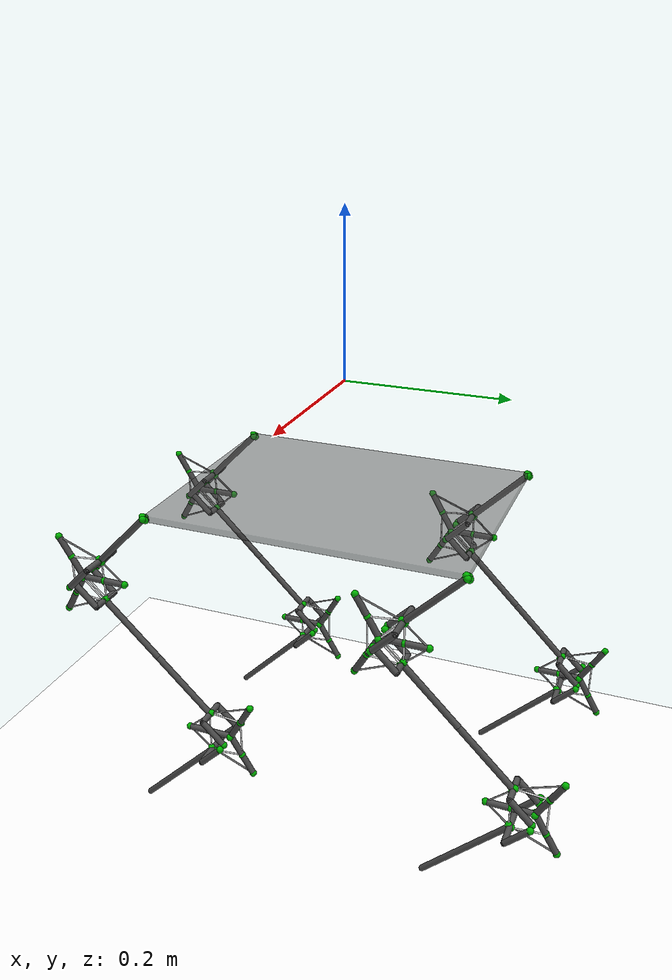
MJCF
<?xml version="1.0" ?>
<mujoco>
	<sensor>
		<actuatorfrc name="QuadSegrity1rl_hip_flexor" actuator="QuadSegrity1rl_hip_flexor"/>
		<actuatorfrc name="QuadSegrity1rl_hip_extensor" actuator="QuadSegrity1rl_hip_extensor"/>
		<actuatorfrc name="QuadSegrity1rl_knee_flexor" actuator="QuadSegrity1rl_knee_flexor"/>
		<actuatorfrc name="QuadSegrity1rl_knee_extensor" actuator="QuadSegrity1rl_knee_extensor"/>
		<actuatorfrc name="QuadSegrity1rr_hip_flexor" actuator="QuadSegrity1rr_hip_flexor"/>
		<actuatorfrc name="QuadSegrity1rr_hip_extensor" actuator="QuadSegrity1rr_hip_extensor"/>
		<actuatorfrc name="QuadSegrity1rr_knee_flexor" actuator="QuadSegrity1rr_knee_flexor"/>
		<actuatorfrc name="QuadSegrity1rr_knee_extensor" actuator="QuadSegrity1rr_knee_extensor"/>
		<actuatorfrc name="QuadSegrity1fr_hip_flexor" actuator="QuadSegrity1fr_hip_flexor"/>
		<actuatorfrc name="QuadSegrity1fr_hip_extensor" actuator="QuadSegrity1fr_hip_extensor"/>
		<actuatorfrc name="QuadSegrity1fr_knee_flexor" actuator="QuadSegrity1fr_knee_flexor"/>
		<actuatorfrc name="QuadSegrity1fr_knee_extensor" actuator="QuadSegrity1fr_knee_extensor"/>
		<actuatorfrc name="QuadSegrity1fl_hip_flexor" actuator="QuadSegrity1fl_hip_flexor"/>
		<actuatorfrc name="QuadSegrity1fl_hip_extensor" actuator="QuadSegrity1fl_hip_extensor"/>
		<actuatorfrc name="QuadSegrity1fl_knee_flexor" actuator="QuadSegrity1fl_knee_flexor"/>
		<actuatorfrc name="QuadSegrity1fl_knee_extensor" actuator="QuadSegrity1fl_knee_extensor"/>
	</sensor>
	<sensor/>
	<actuator>
		<muscle name="QuadSegrity1rl_hip_flexor" tendon="QuadSegrity1rl_hip_flexor" ctrllimited="false" forcelimited="false" lengthrange="-10 10" force="80" scale="200" range="0.1 1.8"/>
		<muscle name="QuadSegrity1rl_hip_extensor" tendon="QuadSegrity1rl_hip_extensor" ctrllimited="false" forcelimited="false" lengthrange="-10 10" force="80" scale="200" range="0.1 1.8"/>
		<muscle name="QuadSegrity1rl_knee_flexor" tendon="QuadSegrity1rl_knee_flexor" ctrllimited="false" forcelimited="false" lengthrange="-10 10" force="80" scale="200" range="0.1 1.8"/>
		<muscle name="QuadSegrity1rl_knee_extensor" tendon="QuadSegrity1rl_knee_extensor" ctrllimited="false" forcelimited="false" lengthrange="-10 10" force="80" scale="200" range="0.1 1.8"/>
		<muscle name="QuadSegrity1rr_hip_flexor" tendon="QuadSegrity1rr_hip_flexor" ctrllimited="false" forcelimited="false" lengthrange="-10 10" force="80" scale="200" range="0.1 1.8"/>
		<muscle name="QuadSegrity1rr_hip_extensor" tendon="QuadSegrity1rr_hip_extensor" ctrllimited="false" forcelimited="false" lengthrange="-10 10" force="80" scale="200" range="0.1 1.8"/>
		<muscle name="QuadSegrity1rr_knee_flexor" tendon="QuadSegrity1rr_knee_flexor" ctrllimited="false" forcelimited="false" lengthrange="-10 10" force="80" scale="200" range="0.1 1.8"/>
		<muscle name="QuadSegrity1rr_knee_extensor" tendon="QuadSegrity1rr_knee_extensor" ctrllimited="false" forcelimited="false" lengthrange="-10 10" force="80" scale="200" range="0.1 1.8"/>
		<muscle name="QuadSegrity1fr_hip_flexor" tendon="QuadSegrity1fr_hip_flexor" ctrllimited="false" forcelimited="false" lengthrange="-10 10" force="80" scale="200" range="0.1 1.8"/>
		<muscle name="QuadSegrity1fr_hip_extensor" tendon="QuadSegrity1fr_hip_extensor" ctrllimited="false" forcelimited="false" lengthrange="-10 10" force="80" scale="200" range="0.1 1.8"/>
		<muscle name="QuadSegrity1fr_knee_flexor" tendon="QuadSegrity1fr_knee_flexor" ctrllimited="false" forcelimited="false" lengthrange="-10 10" force="80" scale="200" range="0.1 1.8"/>
		<muscle name="QuadSegrity1fr_knee_extensor" tendon="QuadSegrity1fr_knee_extensor" ctrllimited="false" forcelimited="false" lengthrange="-10 10" force="80" scale="200" range="0.1 1.8"/>
		<muscle name="QuadSegrity1fl_hip_flexor" tendon="QuadSegrity1fl_hip_flexor" ctrllimited="false" forcelimited="false" lengthrange="-10 10" force="80" scale="200" range="0.1 1.8"/>
		<muscle name="QuadSegrity1fl_hip_extensor" tendon="QuadSegrity1fl_hip_extensor" ctrllimited="false" forcelimited="false" lengthrange="-10 10" force="80" scale="200" range="0.1 1.8"/>
		<muscle name="QuadSegrity1fl_knee_flexor" tendon="QuadSegrity1fl_knee_flexor" ctrllimited="false" forcelimited="false" lengthrange="-10 10" force="80" scale="200" range="0.1 1.8"/>
		<muscle name="QuadSegrity1fl_knee_extensor" tendon="QuadSegrity1fl_knee_extensor" ctrllimited="false" forcelimited="false" lengthrange="-10 10" force="80" scale="200" range="0.1 1.8"/>
	</actuator>
	<tendon>
		<spatial name="QuadSegrity1rl_hip_0" width="0.001" stiffness="1500" damping="10">
			<site site="QuadSegrity1rl_scalupa_5"/>
			<site site="QuadSegrity1rl_hip_B"/>
		</spatial>
		<spatial name="QuadSegrity1rl_hip_1" width="0.001" stiffness="1500" damping="10">
			<site site="QuadSegrity1rl_scalupa_4"/>
			<site site="QuadSegrity1rl_hip_D"/>
		</spatial>
		<spatial name="QuadSegrity1rl_hip_2" width="0.001" stiffness="1500" damping="10">
			<site site="QuadSegrity1rl_humerus_top_5"/>
			<site site="QuadSegrity1rl_hip_D"/>
		</spatial>
		<spatial name="QuadSegrity1rl_hip_3" width="0.001" stiffness="1500" damping="10">
			<site site="QuadSegrity1rl_humerus_top_4"/>
			<site site="QuadSegrity1rl_hip_C"/>
		</spatial>
		<spatial name="QuadSegrity1rl_knee_0" width="0.001" stiffness="1500" damping="10">
			<site site="QuadSegrity1rl_humerus_bot_5"/>
			<site site="QuadSegrity1rl_knee_D"/>
		</spatial>
		<spatial name="QuadSegrity1rl_knee_1" width="0.001" stiffness="1500" damping="10">
			<site site="QuadSegrity1rl_humerus_bot_4"/>
			<site site="QuadSegrity1rl_knee_C"/>
		</spatial>
		<spatial name="QuadSegrity1rl_knee_2" width="0.001" stiffness="1500" damping="10">
			<site site="QuadSegrity1rl_radius_5"/>
			<site site="QuadSegrity1rl_knee_B"/>
		</spatial>
		<spatial name="QuadSegrity1rl_knee_3" width="0.001" stiffness="1500" damping="10">
			<site site="QuadSegrity1rl_radius_4"/>
			<site site="QuadSegrity1rl_knee_D"/>
		</spatial>
		<spatial limited="false" name="QuadSegrity1rl_hip_flexor" range="-0.01 0.01" width="0.001" rgba="1 1 1 1" stiffness="0" damping="1">
			<site site="QuadSegrity1rl_scalupa_0"/>
			<site site="QuadSegrity1rl_scalupa_4"/>
			<site site="QuadSegrity1rl_hip_2"/>
			<site site="QuadSegrity1rl_humerus_top_4"/>
		</spatial>
		<spatial limited="false" name="QuadSegrity1rl_hip_extensor" range="-0.01 0.01" width="0.001" rgba="1 1 1 1" stiffness="0" damping="1">
			<site site="QuadSegrity1rl_scalupa_1"/>
			<site site="QuadSegrity1rl_scalupa_5"/>
			<site site="QuadSegrity1rl_hip_0"/>
			<site site="QuadSegrity1rl_hip_1"/>
			<site site="QuadSegrity1rl_humerus_top_5"/>
		</spatial>
		<spatial limited="false" name="QuadSegrity1rl_knee_flexor" range="-0.01 0.01" width="0.001" rgba="1 1 1 1" stiffness="0" damping="1">
			<site site="QuadSegrity1rl_scalupa_2"/>
			<site site="QuadSegrity1rl_scalupa_6"/>
			<site site="QuadSegrity1rl_hip_3"/>
			<site site="QuadSegrity1rl_humerus_top_6"/>
			<site site="QuadSegrity1rl_humerus_bot_5"/>
			<site site="QuadSegrity1rl_knee_2"/>
			<site site="QuadSegrity1rl_radius_5"/>
		</spatial>
		<spatial limited="false" name="QuadSegrity1rl_knee_extensor" range="-0.01 0.01" width="0.001" rgba="1 1 1 1" stiffness="0" damping="1">
			<site site="QuadSegrity1rl_scalupa_3"/>
			<site site="QuadSegrity1rl_scalupa_7"/>
			<site site="QuadSegrity1rl_hip_4"/>
			<site site="QuadSegrity1rl_humerus_top_7"/>
			<site site="QuadSegrity1rl_humerus_bot_4"/>
			<site site="QuadSegrity1rl_knee_1"/>
			<site site="QuadSegrity1rl_knee_0"/>
			<site site="QuadSegrity1rl_radius_4"/>
		</spatial>
		<spatial name="QuadSegrity1rr_hip_0" width="0.001" stiffness="1500" damping="10">
			<site site="QuadSegrity1rr_scalupa_5"/>
			<site site="QuadSegrity1rr_hip_B"/>
		</spatial>
		<spatial name="QuadSegrity1rr_hip_1" width="0.001" stiffness="1500" damping="10">
			<site site="QuadSegrity1rr_scalupa_4"/>
			<site site="QuadSegrity1rr_hip_D"/>
		</spatial>
		<spatial name="QuadSegrity1rr_hip_2" width="0.001" stiffness="1500" damping="10">
			<site site="QuadSegrity1rr_humerus_top_5"/>
			<site site="QuadSegrity1rr_hip_D"/>
		</spatial>
		<spatial name="QuadSegrity1rr_hip_3" width="0.001" stiffness="1500" damping="10">
			<site site="QuadSegrity1rr_humerus_top_4"/>
			<site site="QuadSegrity1rr_hip_C"/>
		</spatial>
		<spatial name="QuadSegrity1rr_knee_0" width="0.001" stiffness="1500" damping="10">
			<site site="QuadSegrity1rr_humerus_bot_5"/>
			<site site="QuadSegrity1rr_knee_D"/>
		</spatial>
		<spatial name="QuadSegrity1rr_knee_1" width="0.001" stiffness="1500" damping="10">
			<site site="QuadSegrity1rr_humerus_bot_4"/>
			<site site="QuadSegrity1rr_knee_C"/>
		</spatial>
		<spatial name="QuadSegrity1rr_knee_2" width="0.001" stiffness="1500" damping="10">
			<site site="QuadSegrity1rr_radius_5"/>
			<site site="QuadSegrity1rr_knee_B"/>
		</spatial>
		<spatial name="QuadSegrity1rr_knee_3" width="0.001" stiffness="1500" damping="10">
			<site site="QuadSegrity1rr_radius_4"/>
			<site site="QuadSegrity1rr_knee_D"/>
		</spatial>
		<spatial limited="false" name="QuadSegrity1rr_hip_flexor" range="-0.01 0.01" width="0.001" rgba="1 1 1 1" stiffness="0" damping="1">
			<site site="QuadSegrity1rr_scalupa_0"/>
			<site site="QuadSegrity1rr_scalupa_4"/>
			<site site="QuadSegrity1rr_hip_2"/>
			<site site="QuadSegrity1rr_humerus_top_4"/>
		</spatial>
		<spatial limited="false" name="QuadSegrity1rr_hip_extensor" range="-0.01 0.01" width="0.001" rgba="1 1 1 1" stiffness="0" damping="1">
			<site site="QuadSegrity1rr_scalupa_1"/>
			<site site="QuadSegrity1rr_scalupa_5"/>
			<site site="QuadSegrity1rr_hip_0"/>
			<site site="QuadSegrity1rr_hip_1"/>
			<site site="QuadSegrity1rr_humerus_top_5"/>
		</spatial>
		<spatial limited="false" name="QuadSegrity1rr_knee_flexor" range="-0.01 0.01" width="0.001" rgba="1 1 1 1" stiffness="0" damping="1">
			<site site="QuadSegrity1rr_scalupa_2"/>
			<site site="QuadSegrity1rr_scalupa_6"/>
			<site site="QuadSegrity1rr_hip_3"/>
			<site site="QuadSegrity1rr_humerus_top_6"/>
			<site site="QuadSegrity1rr_humerus_bot_5"/>
			<site site="QuadSegrity1rr_knee_2"/>
			<site site="QuadSegrity1rr_radius_5"/>
		</spatial>
		<spatial limited="false" name="QuadSegrity1rr_knee_extensor" range="-0.01 0.01" width="0.001" rgba="1 1 1 1" stiffness="0" damping="1">
			<site site="QuadSegrity1rr_scalupa_3"/>
			<site site="QuadSegrity1rr_scalupa_7"/>
			<site site="QuadSegrity1rr_hip_4"/>
			<site site="QuadSegrity1rr_humerus_top_7"/>
			<site site="QuadSegrity1rr_humerus_bot_4"/>
			<site site="QuadSegrity1rr_knee_1"/>
			<site site="QuadSegrity1rr_knee_0"/>
			<site site="QuadSegrity1rr_radius_4"/>
		</spatial>
		<spatial name="QuadSegrity1fr_hip_0" width="0.001" stiffness="1500" damping="10">
			<site site="QuadSegrity1fr_scalupa_5"/>
			<site site="QuadSegrity1fr_hip_B"/>
		</spatial>
		<spatial name="QuadSegrity1fr_hip_1" width="0.001" stiffness="1500" damping="10">
			<site site="QuadSegrity1fr_scalupa_4"/>
			<site site="QuadSegrity1fr_hip_D"/>
		</spatial>
		<spatial name="QuadSegrity1fr_hip_2" width="0.001" stiffness="1500" damping="10">
			<site site="QuadSegrity1fr_humerus_top_5"/>
			<site site="QuadSegrity1fr_hip_D"/>
		</spatial>
		<spatial name="QuadSegrity1fr_hip_3" width="0.001" stiffness="1500" damping="10">
			<site site="QuadSegrity1fr_humerus_top_4"/>
			<site site="QuadSegrity1fr_hip_C"/>
		</spatial>
		<spatial name="QuadSegrity1fr_knee_0" width="0.001" stiffness="1500" damping="10">
			<site site="QuadSegrity1fr_humerus_bot_5"/>
			<site site="QuadSegrity1fr_knee_D"/>
		</spatial>
		<spatial name="QuadSegrity1fr_knee_1" width="0.001" stiffness="1500" damping="10">
			<site site="QuadSegrity1fr_humerus_bot_4"/>
			<site site="QuadSegrity1fr_knee_C"/>
		</spatial>
		<spatial name="QuadSegrity1fr_knee_2" width="0.001" stiffness="1500" damping="10">
			<site site="QuadSegrity1fr_radius_5"/>
			<site site="QuadSegrity1fr_knee_B"/>
		</spatial>
		<spatial name="QuadSegrity1fr_knee_3" width="0.001" stiffness="1500" damping="10">
			<site site="QuadSegrity1fr_radius_4"/>
			<site site="QuadSegrity1fr_knee_D"/>
		</spatial>
		<spatial limited="false" name="QuadSegrity1fr_hip_flexor" range="-0.01 0.01" width="0.001" rgba="1 1 1 1" stiffness="0" damping="1">
			<site site="QuadSegrity1fr_scalupa_0"/>
			<site site="QuadSegrity1fr_scalupa_4"/>
			<site site="QuadSegrity1fr_hip_2"/>
			<site site="QuadSegrity1fr_humerus_top_4"/>
		</spatial>
		<spatial limited="false" name="QuadSegrity1fr_hip_extensor" range="-0.01 0.01" width="0.001" rgba="1 1 1 1" stiffness="0" damping="1">
			<site site="QuadSegrity1fr_scalupa_1"/>
			<site site="QuadSegrity1fr_scalupa_5"/>
			<site site="QuadSegrity1fr_hip_0"/>
			<site site="QuadSegrity1fr_hip_1"/>
			<site site="QuadSegrity1fr_humerus_top_5"/>
		</spatial>
		<spatial limited="false" name="QuadSegrity1fr_knee_flexor" range="-0.01 0.01" width="0.001" rgba="1 1 1 1" stiffness="0" damping="1">
			<site site="QuadSegrity1fr_scalupa_2"/>
			<site site="QuadSegrity1fr_scalupa_6"/>
			<site site="QuadSegrity1fr_hip_3"/>
			<site site="QuadSegrity1fr_humerus_top_6"/>
			<site site="QuadSegrity1fr_humerus_bot_5"/>
			<site site="QuadSegrity1fr_knee_2"/>
			<site site="QuadSegrity1fr_radius_5"/>
		</spatial>
		<spatial limited="false" name="QuadSegrity1fr_knee_extensor" range="-0.01 0.01" width="0.001" rgba="1 1 1 1" stiffness="0" damping="1">
			<site site="QuadSegrity1fr_scalupa_3"/>
			<site site="QuadSegrity1fr_scalupa_7"/>
			<site site="QuadSegrity1fr_hip_4"/>
			<site site="QuadSegrity1fr_humerus_top_7"/>
			<site site="QuadSegrity1fr_humerus_bot_4"/>
			<site site="QuadSegrity1fr_knee_1"/>
			<site site="QuadSegrity1fr_knee_0"/>
			<site site="QuadSegrity1fr_radius_4"/>
		</spatial>
		<spatial name="QuadSegrity1fl_hip_0" width="0.001" stiffness="1500" damping="10">
			<site site="QuadSegrity1fl_scalupa_5"/>
			<site site="QuadSegrity1fl_hip_B"/>
		</spatial>
		<spatial name="QuadSegrity1fl_hip_1" width="0.001" stiffness="1500" damping="10">
			<site site="QuadSegrity1fl_scalupa_4"/>
			<site site="QuadSegrity1fl_hip_D"/>
		</spatial>
		<spatial name="QuadSegrity1fl_hip_2" width="0.001" stiffness="1500" damping="10">
			<site site="QuadSegrity1fl_humerus_top_5"/>
			<site site="QuadSegrity1fl_hip_D"/>
		</spatial>
		<spatial name="QuadSegrity1fl_hip_3" width="0.001" stiffness="1500" damping="10">
			<site site="QuadSegrity1fl_humerus_top_4"/>
			<site site="QuadSegrity1fl_hip_C"/>
		</spatial>
		<spatial name="QuadSegrity1fl_knee_0" width="0.001" stiffness="1500" damping="10">
			<site site="QuadSegrity1fl_humerus_bot_5"/>
			<site site="QuadSegrity1fl_knee_D"/>
		</spatial>
		<spatial name="QuadSegrity1fl_knee_1" width="0.001" stiffness="1500" damping="10">
			<site site="QuadSegrity1fl_humerus_bot_4"/>
			<site site="QuadSegrity1fl_knee_C"/>
		</spatial>
		<spatial name="QuadSegrity1fl_knee_2" width="0.001" stiffness="1500" damping="10">
			<site site="QuadSegrity1fl_radius_5"/>
			<site site="QuadSegrity1fl_knee_B"/>
		</spatial>
		<spatial name="QuadSegrity1fl_knee_3" width="0.001" stiffness="1500" damping="10">
			<site site="QuadSegrity1fl_radius_4"/>
			<site site="QuadSegrity1fl_knee_D"/>
		</spatial>
		<spatial limited="false" name="QuadSegrity1fl_hip_flexor" range="-0.01 0.01" width="0.001" rgba="1 1 1 1" stiffness="0" damping="1">
			<site site="QuadSegrity1fl_scalupa_0"/>
			<site site="QuadSegrity1fl_scalupa_4"/>
			<site site="QuadSegrity1fl_hip_2"/>
			<site site="QuadSegrity1fl_humerus_top_4"/>
		</spatial>
		<spatial limited="false" name="QuadSegrity1fl_hip_extensor" range="-0.01 0.01" width="0.001" rgba="1 1 1 1" stiffness="0" damping="1">
			<site site="QuadSegrity1fl_scalupa_1"/>
			<site site="QuadSegrity1fl_scalupa_5"/>
			<site site="QuadSegrity1fl_hip_0"/>
			<site site="QuadSegrity1fl_hip_1"/>
			<site site="QuadSegrity1fl_humerus_top_5"/>
		</spatial>
		<spatial limited="false" name="QuadSegrity1fl_knee_flexor" range="-0.01 0.01" width="0.001" rgba="1 1 1 1" stiffness="0" damping="1">
			<site site="QuadSegrity1fl_scalupa_2"/>
			<site site="QuadSegrity1fl_scalupa_6"/>
			<site site="QuadSegrity1fl_hip_3"/>
			<site site="QuadSegrity1fl_humerus_top_6"/>
			<site site="QuadSegrity1fl_humerus_bot_5"/>
			<site site="QuadSegrity1fl_knee_2"/>
			<site site="QuadSegrity1fl_radius_5"/>
		</spatial>
		<spatial limited="false" name="QuadSegrity1fl_knee_extensor" range="-0.01 0.01" width="0.001" rgba="1 1 1 1" stiffness="0" damping="1">
			<site site="QuadSegrity1fl_scalupa_3"/>
			<site site="QuadSegrity1fl_scalupa_7"/>
			<site site="QuadSegrity1fl_hip_4"/>
			<site site="QuadSegrity1fl_humerus_top_7"/>
			<site site="QuadSegrity1fl_humerus_bot_4"/>
			<site site="QuadSegrity1fl_knee_1"/>
			<site site="QuadSegrity1fl_knee_0"/>
			<site site="QuadSegrity1fl_radius_4"/>
		</spatial>
	</tendon>
	<statistic extent="0.4" center="0 0 -0.1"/>
	<visual>
		<rgba haze="0.3 0.3 0.5 1" fog="0.7 0.3 0.1 0.6"/>
	</visual>
	<option timestep="0.001" iterations="50" integrator="RK4" tolerance="1e-10" viscosity="0.002" density="1.2"/>
	<default>
		<joint type="ball"/>
		<muscle ctrllimited="true" ctrlrange="-1000 1000"/>
		<geom size="0.004" density="2000" rgba="0.3 0.3 0.3 1"/>
		<site size="0.0045" rgba="0 .7 0 1"/>
	</default>
	<asset>

		<texture name="texplane" type="2d" builtin="checker" rgb1=".25 .25 .25" rgb2=".28 .28 .28" width="512" height="512" markrgb=".8 .8 .8"/>
		<material name="matplane" reflectance="0.1" texture="texplane" texrepeat="1 1" texuniform="true"/>
	</asset>
	<worldbody>
		<geom name="floor" rgba="1 1 1 1" pos="0 0 -0.7" size="0 0 1" type="plane" material="matplane"/>
		<light directional="true" diffuse=".8 .8 .8" specular=".2 .2 .2" pos="0 0 5" dir="0 0 -1"/>
		<body pos="0 0 0">
			<joint type="free"/>
			<geom type="box" mass="0" rgba="0.3 0.3 0.3 0.5" pos="0 0 -0.15" size="0.15 0.2 0.004"/>
			<geom type="capsule" fromto="0.18 0.10100505063388332 -0.24899494936611666 0.17999999999999997 0.12928932188134523 -0.22071067811865475"/>
			<geom type="capsule" fromto="0.17999999999999997 0.12928932188134523 -0.22071067811865475 0.15 0.12928932188134523 -0.22071067811865475"/>
			<geom type="capsule" fromto="0.12 0.10100505063388332 -0.24899494936611666 0.12 0.12928932188134523 -0.22071067811865475"/>
			<geom type="capsule" fromto="0.12 0.12928932188134523 -0.22071067811865475 0.15 0.12928932188134523 -0.22071067811865475"/>
			<geom type="capsule" fromto="0.15 0.2 -0.15 0.15 0.12928932188134523 -0.22071067811865475"/>
			<site name="QuadSegrity1rl_scalupa_A" pos="0.18 0.10100505063388332 -0.24899494936611666"/>
			<site name="QuadSegrity1rl_scalupa_B" pos="0.12 0.10100505063388332 -0.24899494936611666"/>
			<site name="QuadSegrity1rl_scalupa_0" pos="0.15 0.2017677669529664 -0.15176776695296637"/>
			<site name="QuadSegrity1rl_scalupa_1" pos="0.15 0.19823223304703363 -0.14823223304703362"/>
			<site name="QuadSegrity1rl_scalupa_2" pos="0.1525 0.2 -0.15"/>
			<site name="QuadSegrity1rl_scalupa_3" pos="0.1475 0.2 -0.15"/>
			<site name="QuadSegrity1rl_scalupa_4" pos="0.15 0.1310570888343116 -0.22247844507162112"/>
			<site name="QuadSegrity1rl_scalupa_5" pos="0.15 0.12752155492837888 -0.21894291116568837"/>
			<site name="QuadSegrity1rl_scalupa_6" pos="0.1525 0.12928932188134523 -0.22071067811865475"/>
			<site name="QuadSegrity1rl_scalupa_7" pos="0.1475 0.12928932188134523 -0.22071067811865475"/>
			<body pos=" 0.15        0.10100505 -0.24899495" euler="0 0 0">
				<geom type="capsule" fromto="0.02 0.0 0.0 0.02 0.028284271247461905 -0.028284271247461898"/>
				<geom type="capsule" fromto="0.02 0.028284271247461905 -0.028284271247461898 0.0 0.028284271247461905 -0.028284271247461898"/>
				<geom type="capsule" fromto="-0.02 0.0 0.0 -0.02 0.028284271247461905 -0.028284271247461898"/>
				<geom type="capsule" fromto="-0.02 0.028284271247461905 -0.028284271247461898 0.0 0.028284271247461905 -0.028284271247461898"/>
				<geom type="capsule" fromto="0.0 0.09899494936611666 -0.09899494936611665 0.0 0.028284271247461905 -0.028284271247461898"/>
				<site name="QuadSegrity1rl_humerus_top_A" pos="0.02 0.0 0.0"/>
				<site name="QuadSegrity1rl_humerus_top_B" pos="-0.02 0.0 0.0"/>
				<site name="QuadSegrity1rl_humerus_top_4" pos="0.0 0.030052038200428274 -0.02651650429449553"/>
				<site name="QuadSegrity1rl_humerus_top_5" pos="0.0 0.026516504294495535 -0.030052038200428267"/>
				<site name="QuadSegrity1rl_humerus_top_6" pos="0.0025 0.028284271247461905 -0.028284271247461898"/>
				<site name="QuadSegrity1rl_humerus_top_7" pos="-0.0025 0.028284271247461905 -0.028284271247461898"/>
				<geom type="capsule" fromto="0.02 0.19798989873223333 -0.1979898987322333 0.02 0.16970562748477142 -0.16970562748477144"/>
				<geom type="capsule" fromto="0.02 0.16970562748477142 -0.16970562748477144 0.0 0.16970562748477142 -0.16970562748477142"/>
				<geom type="capsule" fromto="-0.02 0.19798989873223333 -0.1979898987322333 -0.02 0.16970562748477142 -0.16970562748477142"/>
				<geom type="capsule" fromto="-0.02 0.16970562748477142 -0.16970562748477142 0.0 0.16970562748477142 -0.16970562748477142"/>
				<geom type="capsule" fromto="0.0 0.09899494936611666 -0.09899494936611665 0.0 0.16970562748477142 -0.16970562748477142"/>
				<site name="QuadSegrity1rl_humerus_bot_A" pos="0.02 0.19798989873223333 -0.1979898987322333"/>
				<site name="QuadSegrity1rl_humerus_bot_B" pos="-0.02 0.19798989873223333 -0.1979898987322333"/>
				<site name="QuadSegrity1rl_humerus_bot_4" pos="0.0 0.1714733944377378 -0.16793786053180504"/>
				<site name="QuadSegrity1rl_humerus_bot_5" pos="0.0 0.16793786053180507 -0.17147339443773776"/>
				<body pos=" 0.         0.1979899 -0.1979899">
					<geom type="capsule" fromto="0.03 0.0 0.0 0.03 -0.028284271247461898 -0.028284271247461905"/>
					<geom type="capsule" fromto="0.03 -0.028284271247461898 -0.028284271247461905 0.0 -0.028284271247461898 -0.028284271247461905"/>
					<geom type="capsule" fromto="-0.03 0.0 0.0 -0.03 -0.028284271247461898 -0.028284271247461905"/>
					<geom type="capsule" fromto="-0.03 -0.028284271247461898 -0.028284271247461905 0.0 -0.028284271247461898 -0.028284271247461905"/>
					<geom type="capsule" fromto="0.0 -0.13435028842544403 -0.13435028842544405 0.0 -0.028284271247461898 -0.028284271247461905"/>
					<site name="QuadSegrity1rl_radius_A" pos="0.03 0.0 0.0"/>
					<site name="QuadSegrity1rl_radius_B" pos="-0.03 0.0 0.0"/>
					<site name="QuadSegrity1rl_radius_4" pos="0.0 -0.02651650429449553 -0.030052038200428274"/>
					<site name="QuadSegrity1rl_radius_5" pos="0.0 -0.030052038200428267 -0.026516504294495535"/>
					<joint type="hinge" axis="1 0 0" stiffness="0"/>
				</body>
				<body pos=" 0.         0.1979899 -0.1979899" euler="0 0 0">
					<geom type="capsule" fromto="0 0 0 0.0 0.02999999999999998 -0.051961524227066326"/>
					<geom type="capsule" fromto="0 0 0 0.0 0.029999999999999995 0.05196152422706631"/>
					<geom type="capsule" fromto="0 0 0 0.0 -0.06 7.347880794884118e-18"/>
					<site name="QuadSegrity1rl_knee_B" pos="0.0 0.02999999999999998 -0.051961524227066326"/>
					<site name="QuadSegrity1rl_knee_C" pos="0.0 0.029999999999999995 0.05196152422706631"/>
					<site name="QuadSegrity1rl_knee_D" pos="0.0 -0.06 7.347880794884118e-18"/>
					<site name="QuadSegrity1rl_knee_0" pos="0.0 0.01499999999999999 -0.025980762113533163"/>
					<site name="QuadSegrity1rl_knee_1" pos="0.0 0.014999999999999998 0.025980762113533156"/>
					<site name="QuadSegrity1rl_knee_2" pos="0.0 -0.03 3.673940397442059e-18"/>
					<site name="QuadSegrity1rl_knee_3" pos="0.0025 0.0 0.0"/>
					<site name="QuadSegrity1rl_knee_4" pos="-0.0025 0.0 0.0"/>
					<geom type="box" mass="0" rgba="0 0 0 0" pos="0.0 0.02999999999999998 -0.051961524227066326" size="0.02 0.02 0.008" euler="-60 0 0"/>
					<geom type="box" mass="0" rgba="0 0 0 0" pos="0.0 0.029999999999999995 0.05196152422706631" size="0.02 0.02 0.008" euler="60 0 0"/>
					<geom type="box" mass="0" rgba="0 0 0 0" pos="0.0 -0.06 7.347880794884118e-18" size="0.02 0.02 0.008" euler="180 0 0"/>
					<joint type="hinge" axis="1 0 0" stiffness="0"/>
				</body>
				<joint type="hinge" axis="1 0 0" stiffness="0"/>
			</body>
			<body pos=" 0.15        0.10100505 -0.24899495" euler="0 0 0">
				<geom type="capsule" fromto="0 0 0 0.0 -0.02999999999999999 0.05196152422706632"/>
				<geom type="capsule" fromto="0 0 0 0.0 -0.02999999999999999 -0.05196152422706632"/>
				<geom type="capsule" fromto="0 0 0 0.0 0.06 0.0"/>
				<site name="QuadSegrity1rl_hip_B" pos="0.0 -0.02999999999999999 0.05196152422706632"/>
				<site name="QuadSegrity1rl_hip_C" pos="0.0 -0.02999999999999999 -0.05196152422706632"/>
				<site name="QuadSegrity1rl_hip_D" pos="0.0 0.06 0.0"/>
				<site name="QuadSegrity1rl_hip_0" pos="0.0 -0.014999999999999994 0.02598076211353316"/>
				<site name="QuadSegrity1rl_hip_1" pos="0.0 -0.014999999999999994 -0.02598076211353316"/>
				<site name="QuadSegrity1rl_hip_2" pos="0.0 0.03 0.0"/>
				<site name="QuadSegrity1rl_hip_3" pos="0.0025 0.0 0.0"/>
				<site name="QuadSegrity1rl_hip_4" pos="-0.0025 0.0 0.0"/>
				<geom type="box" mass="0" rgba="0 0 0 0" pos="0.0 -0.02999999999999999 0.05196152422706632" size="0.02 0.02 0.008" euler="-60 0 0"/>
				<geom type="box" mass="0" rgba="0 0 0 0" pos="0.0 -0.02999999999999999 -0.05196152422706632" size="0.02 0.02 0.008" euler="60 0 0"/>
				<geom type="box" mass="0" rgba="0 0 0 0" pos="0.0 0.06 0.0" size="0.02 0.02 0.008" euler="180 0 0"/>
				<joint type="hinge" axis="1 0 0" stiffness="0"/>
			</body>
			<geom type="capsule" fromto="-0.12 0.10100505063388332 -0.24899494936611666 -0.12000000000000002 0.12928932188134523 -0.22071067811865475"/>
			<geom type="capsule" fromto="-0.12000000000000002 0.12928932188134523 -0.22071067811865475 -0.15 0.12928932188134523 -0.22071067811865475"/>
			<geom type="capsule" fromto="-0.18 0.10100505063388332 -0.24899494936611666 -0.18 0.12928932188134523 -0.22071067811865475"/>
			<geom type="capsule" fromto="-0.18 0.12928932188134523 -0.22071067811865475 -0.15 0.12928932188134523 -0.22071067811865475"/>
			<geom type="capsule" fromto="-0.15 0.2 -0.15 -0.15 0.12928932188134523 -0.22071067811865475"/>
			<site name="QuadSegrity1rr_scalupa_A" pos="-0.12 0.10100505063388332 -0.24899494936611666"/>
			<site name="QuadSegrity1rr_scalupa_B" pos="-0.18 0.10100505063388332 -0.24899494936611666"/>
			<site name="QuadSegrity1rr_scalupa_0" pos="-0.15 0.2017677669529664 -0.15176776695296637"/>
			<site name="QuadSegrity1rr_scalupa_1" pos="-0.15 0.19823223304703363 -0.14823223304703362"/>
			<site name="QuadSegrity1rr_scalupa_2" pos="-0.1475 0.2 -0.15"/>
			<site name="QuadSegrity1rr_scalupa_3" pos="-0.1525 0.2 -0.15"/>
			<site name="QuadSegrity1rr_scalupa_4" pos="-0.15 0.1310570888343116 -0.22247844507162112"/>
			<site name="QuadSegrity1rr_scalupa_5" pos="-0.15 0.12752155492837888 -0.21894291116568837"/>
			<site name="QuadSegrity1rr_scalupa_6" pos="-0.1475 0.12928932188134523 -0.22071067811865475"/>
			<site name="QuadSegrity1rr_scalupa_7" pos="-0.1525 0.12928932188134523 -0.22071067811865475"/>
			<body pos="-0.15        0.10100505 -0.24899495" euler="0 0 0">
				<geom type="capsule" fromto="0.02 0.0 0.0 0.02 0.028284271247461905 -0.028284271247461898"/>
				<geom type="capsule" fromto="0.02 0.028284271247461905 -0.028284271247461898 0.0 0.028284271247461905 -0.028284271247461898"/>
				<geom type="capsule" fromto="-0.02 0.0 0.0 -0.02 0.028284271247461905 -0.028284271247461898"/>
				<geom type="capsule" fromto="-0.02 0.028284271247461905 -0.028284271247461898 0.0 0.028284271247461905 -0.028284271247461898"/>
				<geom type="capsule" fromto="0.0 0.09899494936611666 -0.09899494936611665 0.0 0.028284271247461905 -0.028284271247461898"/>
				<site name="QuadSegrity1rr_humerus_top_A" pos="0.02 0.0 0.0"/>
				<site name="QuadSegrity1rr_humerus_top_B" pos="-0.02 0.0 0.0"/>
				<site name="QuadSegrity1rr_humerus_top_4" pos="0.0 0.030052038200428274 -0.02651650429449553"/>
				<site name="QuadSegrity1rr_humerus_top_5" pos="0.0 0.026516504294495535 -0.030052038200428267"/>
				<site name="QuadSegrity1rr_humerus_top_6" pos="0.0025 0.028284271247461905 -0.028284271247461898"/>
				<site name="QuadSegrity1rr_humerus_top_7" pos="-0.0025 0.028284271247461905 -0.028284271247461898"/>
				<geom type="capsule" fromto="0.02 0.19798989873223333 -0.1979898987322333 0.02 0.16970562748477142 -0.16970562748477144"/>
				<geom type="capsule" fromto="0.02 0.16970562748477142 -0.16970562748477144 0.0 0.16970562748477142 -0.16970562748477142"/>
				<geom type="capsule" fromto="-0.02 0.19798989873223333 -0.1979898987322333 -0.02 0.16970562748477142 -0.16970562748477142"/>
				<geom type="capsule" fromto="-0.02 0.16970562748477142 -0.16970562748477142 0.0 0.16970562748477142 -0.16970562748477142"/>
				<geom type="capsule" fromto="0.0 0.09899494936611666 -0.09899494936611665 0.0 0.16970562748477142 -0.16970562748477142"/>
				<site name="QuadSegrity1rr_humerus_bot_A" pos="0.02 0.19798989873223333 -0.1979898987322333"/>
				<site name="QuadSegrity1rr_humerus_bot_B" pos="-0.02 0.19798989873223333 -0.1979898987322333"/>
				<site name="QuadSegrity1rr_humerus_bot_4" pos="0.0 0.1714733944377378 -0.16793786053180504"/>
				<site name="QuadSegrity1rr_humerus_bot_5" pos="0.0 0.16793786053180507 -0.17147339443773776"/>
				<body pos=" 0.         0.1979899 -0.1979899">
					<geom type="capsule" fromto="0.03 0.0 0.0 0.03 -0.028284271247461898 -0.028284271247461905"/>
					<geom type="capsule" fromto="0.03 -0.028284271247461898 -0.028284271247461905 0.0 -0.028284271247461898 -0.028284271247461905"/>
					<geom type="capsule" fromto="-0.03 0.0 0.0 -0.03 -0.028284271247461898 -0.028284271247461905"/>
					<geom type="capsule" fromto="-0.03 -0.028284271247461898 -0.028284271247461905 0.0 -0.028284271247461898 -0.028284271247461905"/>
					<geom type="capsule" fromto="0.0 -0.13435028842544403 -0.13435028842544405 0.0 -0.028284271247461898 -0.028284271247461905"/>
					<site name="QuadSegrity1rr_radius_A" pos="0.03 0.0 0.0"/>
					<site name="QuadSegrity1rr_radius_B" pos="-0.03 0.0 0.0"/>
					<site name="QuadSegrity1rr_radius_4" pos="0.0 -0.02651650429449553 -0.030052038200428274"/>
					<site name="QuadSegrity1rr_radius_5" pos="0.0 -0.030052038200428267 -0.026516504294495535"/>
					<joint type="hinge" axis="1 0 0" stiffness="0"/>
				</body>
				<body pos=" 0.         0.1979899 -0.1979899" euler="0 0 0">
					<geom type="capsule" fromto="0 0 0 0.0 0.02999999999999998 -0.051961524227066326"/>
					<geom type="capsule" fromto="0 0 0 0.0 0.029999999999999995 0.05196152422706631"/>
					<geom type="capsule" fromto="0 0 0 0.0 -0.06 7.347880794884118e-18"/>
					<site name="QuadSegrity1rr_knee_B" pos="0.0 0.02999999999999998 -0.051961524227066326"/>
					<site name="QuadSegrity1rr_knee_C" pos="0.0 0.029999999999999995 0.05196152422706631"/>
					<site name="QuadSegrity1rr_knee_D" pos="0.0 -0.06 7.347880794884118e-18"/>
					<site name="QuadSegrity1rr_knee_0" pos="0.0 0.01499999999999999 -0.025980762113533163"/>
					<site name="QuadSegrity1rr_knee_1" pos="0.0 0.014999999999999998 0.025980762113533156"/>
					<site name="QuadSegrity1rr_knee_2" pos="0.0 -0.03 3.673940397442059e-18"/>
					<site name="QuadSegrity1rr_knee_3" pos="0.0025 0.0 0.0"/>
					<site name="QuadSegrity1rr_knee_4" pos="-0.0025 0.0 0.0"/>
					<geom type="box" mass="0" rgba="0 0 0 0" pos="0.0 0.02999999999999998 -0.051961524227066326" size="0.02 0.02 0.008" euler="-60 0 0"/>
					<geom type="box" mass="0" rgba="0 0 0 0" pos="0.0 0.029999999999999995 0.05196152422706631" size="0.02 0.02 0.008" euler="60 0 0"/>
					<geom type="box" mass="0" rgba="0 0 0 0" pos="0.0 -0.06 7.347880794884118e-18" size="0.02 0.02 0.008" euler="180 0 0"/>
					<joint type="hinge" axis="1 0 0" stiffness="0"/>
				</body>
				<joint type="hinge" axis="1 0 0" stiffness="0"/>
			</body>
			<body pos="-0.15        0.10100505 -0.24899495" euler="0 0 0">
				<geom type="capsule" fromto="0 0 0 0.0 -0.02999999999999999 0.05196152422706632"/>
				<geom type="capsule" fromto="0 0 0 0.0 -0.02999999999999999 -0.05196152422706632"/>
				<geom type="capsule" fromto="0 0 0 0.0 0.06 0.0"/>
				<site name="QuadSegrity1rr_hip_B" pos="0.0 -0.02999999999999999 0.05196152422706632"/>
				<site name="QuadSegrity1rr_hip_C" pos="0.0 -0.02999999999999999 -0.05196152422706632"/>
				<site name="QuadSegrity1rr_hip_D" pos="0.0 0.06 0.0"/>
				<site name="QuadSegrity1rr_hip_0" pos="0.0 -0.014999999999999994 0.02598076211353316"/>
				<site name="QuadSegrity1rr_hip_1" pos="0.0 -0.014999999999999994 -0.02598076211353316"/>
				<site name="QuadSegrity1rr_hip_2" pos="0.0 0.03 0.0"/>
				<site name="QuadSegrity1rr_hip_3" pos="0.0025 0.0 0.0"/>
				<site name="QuadSegrity1rr_hip_4" pos="-0.0025 0.0 0.0"/>
				<geom type="box" mass="0" rgba="0 0 0 0" pos="0.0 -0.02999999999999999 0.05196152422706632" size="0.02 0.02 0.008" euler="-60 0 0"/>
				<geom type="box" mass="0" rgba="0 0 0 0" pos="0.0 -0.02999999999999999 -0.05196152422706632" size="0.02 0.02 0.008" euler="60 0 0"/>
				<geom type="box" mass="0" rgba="0 0 0 0" pos="0.0 0.06 0.0" size="0.02 0.02 0.008" euler="180 0 0"/>
				<joint type="hinge" axis="1 0 0" stiffness="0"/>
			</body>
			<geom type="capsule" fromto="0.18 -0.2989949493661167 -0.24899494936611666 0.17999999999999997 -0.2707106781186548 -0.22071067811865475"/>
			<geom type="capsule" fromto="0.17999999999999997 -0.2707106781186548 -0.22071067811865475 0.15 -0.2707106781186548 -0.22071067811865475"/>
			<geom type="capsule" fromto="0.12 -0.2989949493661167 -0.24899494936611666 0.12 -0.2707106781186548 -0.22071067811865475"/>
			<geom type="capsule" fromto="0.12 -0.2707106781186548 -0.22071067811865475 0.15 -0.2707106781186548 -0.22071067811865475"/>
			<geom type="capsule" fromto="0.15 -0.2 -0.15 0.15 -0.2707106781186548 -0.22071067811865475"/>
			<site name="QuadSegrity1fr_scalupa_A" pos="0.18 -0.2989949493661167 -0.24899494936611666"/>
			<site name="QuadSegrity1fr_scalupa_B" pos="0.12 -0.2989949493661167 -0.24899494936611666"/>
			<site name="QuadSegrity1fr_scalupa_0" pos="0.15 -0.19823223304703363 -0.15176776695296637"/>
			<site name="QuadSegrity1fr_scalupa_1" pos="0.15 -0.2017677669529664 -0.14823223304703362"/>
			<site name="QuadSegrity1fr_scalupa_2" pos="0.1525 -0.2 -0.15"/>
			<site name="QuadSegrity1fr_scalupa_3" pos="0.1475 -0.2 -0.15"/>
			<site name="QuadSegrity1fr_scalupa_4" pos="0.15 -0.2689429111656884 -0.22247844507162112"/>
			<site name="QuadSegrity1fr_scalupa_5" pos="0.15 -0.2724784450716211 -0.21894291116568837"/>
			<site name="QuadSegrity1fr_scalupa_6" pos="0.1525 -0.2707106781186548 -0.22071067811865475"/>
			<site name="QuadSegrity1fr_scalupa_7" pos="0.1475 -0.2707106781186548 -0.22071067811865475"/>
			<body pos=" 0.15       -0.29899495 -0.24899495" euler="0 0 0">
				<geom type="capsule" fromto="0.02 0.0 0.0 0.02 0.028284271247461905 -0.028284271247461898"/>
				<geom type="capsule" fromto="0.02 0.028284271247461905 -0.028284271247461898 0.0 0.028284271247461905 -0.028284271247461898"/>
				<geom type="capsule" fromto="-0.02 0.0 0.0 -0.02 0.028284271247461905 -0.028284271247461898"/>
				<geom type="capsule" fromto="-0.02 0.028284271247461905 -0.028284271247461898 0.0 0.028284271247461905 -0.028284271247461898"/>
				<geom type="capsule" fromto="0.0 0.09899494936611666 -0.09899494936611665 0.0 0.028284271247461905 -0.028284271247461898"/>
				<site name="QuadSegrity1fr_humerus_top_A" pos="0.02 0.0 0.0"/>
				<site name="QuadSegrity1fr_humerus_top_B" pos="-0.02 0.0 0.0"/>
				<site name="QuadSegrity1fr_humerus_top_4" pos="0.0 0.030052038200428274 -0.02651650429449553"/>
				<site name="QuadSegrity1fr_humerus_top_5" pos="0.0 0.026516504294495535 -0.030052038200428267"/>
				<site name="QuadSegrity1fr_humerus_top_6" pos="0.0025 0.028284271247461905 -0.028284271247461898"/>
				<site name="QuadSegrity1fr_humerus_top_7" pos="-0.0025 0.028284271247461905 -0.028284271247461898"/>
				<geom type="capsule" fromto="0.02 0.19798989873223333 -0.1979898987322333 0.02 0.16970562748477142 -0.16970562748477144"/>
				<geom type="capsule" fromto="0.02 0.16970562748477142 -0.16970562748477144 0.0 0.16970562748477142 -0.16970562748477142"/>
				<geom type="capsule" fromto="-0.02 0.19798989873223333 -0.1979898987322333 -0.02 0.16970562748477142 -0.16970562748477142"/>
				<geom type="capsule" fromto="-0.02 0.16970562748477142 -0.16970562748477142 0.0 0.16970562748477142 -0.16970562748477142"/>
				<geom type="capsule" fromto="0.0 0.09899494936611666 -0.09899494936611665 0.0 0.16970562748477142 -0.16970562748477142"/>
				<site name="QuadSegrity1fr_humerus_bot_A" pos="0.02 0.19798989873223333 -0.1979898987322333"/>
				<site name="QuadSegrity1fr_humerus_bot_B" pos="-0.02 0.19798989873223333 -0.1979898987322333"/>
				<site name="QuadSegrity1fr_humerus_bot_4" pos="0.0 0.1714733944377378 -0.16793786053180504"/>
				<site name="QuadSegrity1fr_humerus_bot_5" pos="0.0 0.16793786053180507 -0.17147339443773776"/>
				<body pos=" 0.         0.1979899 -0.1979899">
					<geom type="capsule" fromto="0.03 0.0 0.0 0.03 -0.028284271247461898 -0.028284271247461905"/>
					<geom type="capsule" fromto="0.03 -0.028284271247461898 -0.028284271247461905 0.0 -0.028284271247461898 -0.028284271247461905"/>
					<geom type="capsule" fromto="-0.03 0.0 0.0 -0.03 -0.028284271247461898 -0.028284271247461905"/>
					<geom type="capsule" fromto="-0.03 -0.028284271247461898 -0.028284271247461905 0.0 -0.028284271247461898 -0.028284271247461905"/>
					<geom type="capsule" fromto="0.0 -0.13435028842544403 -0.13435028842544405 0.0 -0.028284271247461898 -0.028284271247461905"/>
					<site name="QuadSegrity1fr_radius_A" pos="0.03 0.0 0.0"/>
					<site name="QuadSegrity1fr_radius_B" pos="-0.03 0.0 0.0"/>
					<site name="QuadSegrity1fr_radius_4" pos="0.0 -0.02651650429449553 -0.030052038200428274"/>
					<site name="QuadSegrity1fr_radius_5" pos="0.0 -0.030052038200428267 -0.026516504294495535"/>
					<joint type="hinge" axis="1 0 0" stiffness="0"/>
				</body>
				<body pos=" 0.         0.1979899 -0.1979899" euler="0 0 0">
					<geom type="capsule" fromto="0 0 0 0.0 0.02999999999999998 -0.051961524227066326"/>
					<geom type="capsule" fromto="0 0 0 0.0 0.029999999999999995 0.05196152422706631"/>
					<geom type="capsule" fromto="0 0 0 0.0 -0.06 7.347880794884118e-18"/>
					<site name="QuadSegrity1fr_knee_B" pos="0.0 0.02999999999999998 -0.051961524227066326"/>
					<site name="QuadSegrity1fr_knee_C" pos="0.0 0.029999999999999995 0.05196152422706631"/>
					<site name="QuadSegrity1fr_knee_D" pos="0.0 -0.06 7.347880794884118e-18"/>
					<site name="QuadSegrity1fr_knee_0" pos="0.0 0.01499999999999999 -0.025980762113533163"/>
					<site name="QuadSegrity1fr_knee_1" pos="0.0 0.014999999999999998 0.025980762113533156"/>
					<site name="QuadSegrity1fr_knee_2" pos="0.0 -0.03 3.673940397442059e-18"/>
					<site name="QuadSegrity1fr_knee_3" pos="0.0025 0.0 0.0"/>
					<site name="QuadSegrity1fr_knee_4" pos="-0.0025 0.0 0.0"/>
					<geom type="box" mass="0" rgba="0 0 0 0" pos="0.0 0.02999999999999998 -0.051961524227066326" size="0.02 0.02 0.008" euler="-60 0 0"/>
					<geom type="box" mass="0" rgba="0 0 0 0" pos="0.0 0.029999999999999995 0.05196152422706631" size="0.02 0.02 0.008" euler="60 0 0"/>
					<geom type="box" mass="0" rgba="0 0 0 0" pos="0.0 -0.06 7.347880794884118e-18" size="0.02 0.02 0.008" euler="180 0 0"/>
					<joint type="hinge" axis="1 0 0" stiffness="0"/>
				</body>
				<joint type="hinge" axis="1 0 0" stiffness="0"/>
			</body>
			<body pos=" 0.15       -0.29899495 -0.24899495" euler="0 0 0">
				<geom type="capsule" fromto="0 0 0 0.0 -0.02999999999999999 0.05196152422706632"/>
				<geom type="capsule" fromto="0 0 0 0.0 -0.02999999999999999 -0.05196152422706632"/>
				<geom type="capsule" fromto="0 0 0 0.0 0.06 0.0"/>
				<site name="QuadSegrity1fr_hip_B" pos="0.0 -0.02999999999999999 0.05196152422706632"/>
				<site name="QuadSegrity1fr_hip_C" pos="0.0 -0.02999999999999999 -0.05196152422706632"/>
				<site name="QuadSegrity1fr_hip_D" pos="0.0 0.06 0.0"/>
				<site name="QuadSegrity1fr_hip_0" pos="0.0 -0.014999999999999994 0.02598076211353316"/>
				<site name="QuadSegrity1fr_hip_1" pos="0.0 -0.014999999999999994 -0.02598076211353316"/>
				<site name="QuadSegrity1fr_hip_2" pos="0.0 0.03 0.0"/>
				<site name="QuadSegrity1fr_hip_3" pos="0.0025 0.0 0.0"/>
				<site name="QuadSegrity1fr_hip_4" pos="-0.0025 0.0 0.0"/>
				<geom type="box" mass="0" rgba="0 0 0 0" pos="0.0 -0.02999999999999999 0.05196152422706632" size="0.02 0.02 0.008" euler="-60 0 0"/>
				<geom type="box" mass="0" rgba="0 0 0 0" pos="0.0 -0.02999999999999999 -0.05196152422706632" size="0.02 0.02 0.008" euler="60 0 0"/>
				<geom type="box" mass="0" rgba="0 0 0 0" pos="0.0 0.06 0.0" size="0.02 0.02 0.008" euler="180 0 0"/>
				<joint type="hinge" axis="1 0 0" stiffness="0"/>
			</body>
			<geom type="capsule" fromto="-0.12 -0.2989949493661167 -0.24899494936611666 -0.12000000000000002 -0.2707106781186548 -0.22071067811865475"/>
			<geom type="capsule" fromto="-0.12000000000000002 -0.2707106781186548 -0.22071067811865475 -0.15 -0.2707106781186548 -0.22071067811865475"/>
			<geom type="capsule" fromto="-0.18 -0.2989949493661167 -0.24899494936611666 -0.18 -0.2707106781186548 -0.22071067811865475"/>
			<geom type="capsule" fromto="-0.18 -0.2707106781186548 -0.22071067811865475 -0.15 -0.2707106781186548 -0.22071067811865475"/>
			<geom type="capsule" fromto="-0.15 -0.2 -0.15 -0.15 -0.2707106781186548 -0.22071067811865475"/>
			<site name="QuadSegrity1fl_scalupa_A" pos="-0.12 -0.2989949493661167 -0.24899494936611666"/>
			<site name="QuadSegrity1fl_scalupa_B" pos="-0.18 -0.2989949493661167 -0.24899494936611666"/>
			<site name="QuadSegrity1fl_scalupa_0" pos="-0.15 -0.19823223304703363 -0.15176776695296637"/>
			<site name="QuadSegrity1fl_scalupa_1" pos="-0.15 -0.2017677669529664 -0.14823223304703362"/>
			<site name="QuadSegrity1fl_scalupa_2" pos="-0.1475 -0.2 -0.15"/>
			<site name="QuadSegrity1fl_scalupa_3" pos="-0.1525 -0.2 -0.15"/>
			<site name="QuadSegrity1fl_scalupa_4" pos="-0.15 -0.2689429111656884 -0.22247844507162112"/>
			<site name="QuadSegrity1fl_scalupa_5" pos="-0.15 -0.2724784450716211 -0.21894291116568837"/>
			<site name="QuadSegrity1fl_scalupa_6" pos="-0.1475 -0.2707106781186548 -0.22071067811865475"/>
			<site name="QuadSegrity1fl_scalupa_7" pos="-0.1525 -0.2707106781186548 -0.22071067811865475"/>
			<body pos="-0.15       -0.29899495 -0.24899495" euler="0 0 0">
				<geom type="capsule" fromto="0.02 0.0 0.0 0.02 0.028284271247461905 -0.028284271247461898"/>
				<geom type="capsule" fromto="0.02 0.028284271247461905 -0.028284271247461898 0.0 0.028284271247461905 -0.028284271247461898"/>
				<geom type="capsule" fromto="-0.02 0.0 0.0 -0.02 0.028284271247461905 -0.028284271247461898"/>
				<geom type="capsule" fromto="-0.02 0.028284271247461905 -0.028284271247461898 0.0 0.028284271247461905 -0.028284271247461898"/>
				<geom type="capsule" fromto="0.0 0.09899494936611666 -0.09899494936611665 0.0 0.028284271247461905 -0.028284271247461898"/>
				<site name="QuadSegrity1fl_humerus_top_A" pos="0.02 0.0 0.0"/>
				<site name="QuadSegrity1fl_humerus_top_B" pos="-0.02 0.0 0.0"/>
				<site name="QuadSegrity1fl_humerus_top_4" pos="0.0 0.030052038200428274 -0.02651650429449553"/>
				<site name="QuadSegrity1fl_humerus_top_5" pos="0.0 0.026516504294495535 -0.030052038200428267"/>
				<site name="QuadSegrity1fl_humerus_top_6" pos="0.0025 0.028284271247461905 -0.028284271247461898"/>
				<site name="QuadSegrity1fl_humerus_top_7" pos="-0.0025 0.028284271247461905 -0.028284271247461898"/>
				<geom type="capsule" fromto="0.02 0.19798989873223333 -0.1979898987322333 0.02 0.16970562748477142 -0.16970562748477144"/>
				<geom type="capsule" fromto="0.02 0.16970562748477142 -0.16970562748477144 0.0 0.16970562748477142 -0.16970562748477142"/>
				<geom type="capsule" fromto="-0.02 0.19798989873223333 -0.1979898987322333 -0.02 0.16970562748477142 -0.16970562748477142"/>
				<geom type="capsule" fromto="-0.02 0.16970562748477142 -0.16970562748477142 0.0 0.16970562748477142 -0.16970562748477142"/>
				<geom type="capsule" fromto="0.0 0.09899494936611666 -0.09899494936611665 0.0 0.16970562748477142 -0.16970562748477142"/>
				<site name="QuadSegrity1fl_humerus_bot_A" pos="0.02 0.19798989873223333 -0.1979898987322333"/>
				<site name="QuadSegrity1fl_humerus_bot_B" pos="-0.02 0.19798989873223333 -0.1979898987322333"/>
				<site name="QuadSegrity1fl_humerus_bot_4" pos="0.0 0.1714733944377378 -0.16793786053180504"/>
				<site name="QuadSegrity1fl_humerus_bot_5" pos="0.0 0.16793786053180507 -0.17147339443773776"/>
				<body pos=" 0.         0.1979899 -0.1979899">
					<geom type="capsule" fromto="0.03 0.0 0.0 0.03 -0.028284271247461898 -0.028284271247461905"/>
					<geom type="capsule" fromto="0.03 -0.028284271247461898 -0.028284271247461905 0.0 -0.028284271247461898 -0.028284271247461905"/>
					<geom type="capsule" fromto="-0.03 0.0 0.0 -0.03 -0.028284271247461898 -0.028284271247461905"/>
					<geom type="capsule" fromto="-0.03 -0.028284271247461898 -0.028284271247461905 0.0 -0.028284271247461898 -0.028284271247461905"/>
					<geom type="capsule" fromto="0.0 -0.13435028842544403 -0.13435028842544405 0.0 -0.028284271247461898 -0.028284271247461905"/>
					<site name="QuadSegrity1fl_radius_A" pos="0.03 0.0 0.0"/>
					<site name="QuadSegrity1fl_radius_B" pos="-0.03 0.0 0.0"/>
					<site name="QuadSegrity1fl_radius_4" pos="0.0 -0.02651650429449553 -0.030052038200428274"/>
					<site name="QuadSegrity1fl_radius_5" pos="0.0 -0.030052038200428267 -0.026516504294495535"/>
					<joint type="hinge" axis="1 0 0" stiffness="0"/>
				</body>
				<body pos=" 0.         0.1979899 -0.1979899" euler="0 0 0">
					<geom type="capsule" fromto="0 0 0 0.0 0.02999999999999998 -0.051961524227066326"/>
					<geom type="capsule" fromto="0 0 0 0.0 0.029999999999999995 0.05196152422706631"/>
					<geom type="capsule" fromto="0 0 0 0.0 -0.06 7.347880794884118e-18"/>
					<site name="QuadSegrity1fl_knee_B" pos="0.0 0.02999999999999998 -0.051961524227066326"/>
					<site name="QuadSegrity1fl_knee_C" pos="0.0 0.029999999999999995 0.05196152422706631"/>
					<site name="QuadSegrity1fl_knee_D" pos="0.0 -0.06 7.347880794884118e-18"/>
					<site name="QuadSegrity1fl_knee_0" pos="0.0 0.01499999999999999 -0.025980762113533163"/>
					<site name="QuadSegrity1fl_knee_1" pos="0.0 0.014999999999999998 0.025980762113533156"/>
					<site name="QuadSegrity1fl_knee_2" pos="0.0 -0.03 3.673940397442059e-18"/>
					<site name="QuadSegrity1fl_knee_3" pos="0.0025 0.0 0.0"/>
					<site name="QuadSegrity1fl_knee_4" pos="-0.0025 0.0 0.0"/>
					<geom type="box" mass="0" rgba="0 0 0 0" pos="0.0 0.02999999999999998 -0.051961524227066326" size="0.02 0.02 0.008" euler="-60 0 0"/>
					<geom type="box" mass="0" rgba="0 0 0 0" pos="0.0 0.029999999999999995 0.05196152422706631" size="0.02 0.02 0.008" euler="60 0 0"/>
					<geom type="box" mass="0" rgba="0 0 0 0" pos="0.0 -0.06 7.347880794884118e-18" size="0.02 0.02 0.008" euler="180 0 0"/>
					<joint type="hinge" axis="1 0 0" stiffness="0"/>
				</body>
				<joint type="hinge" axis="1 0 0" stiffness="0"/>
			</body>
			<body pos="-0.15       -0.29899495 -0.24899495" euler="0 0 0">
				<geom type="capsule" fromto="0 0 0 0.0 -0.02999999999999999 0.05196152422706632"/>
				<geom type="capsule" fromto="0 0 0 0.0 -0.02999999999999999 -0.05196152422706632"/>
				<geom type="capsule" fromto="0 0 0 0.0 0.06 0.0"/>
				<site name="QuadSegrity1fl_hip_B" pos="0.0 -0.02999999999999999 0.05196152422706632"/>
				<site name="QuadSegrity1fl_hip_C" pos="0.0 -0.02999999999999999 -0.05196152422706632"/>
				<site name="QuadSegrity1fl_hip_D" pos="0.0 0.06 0.0"/>
				<site name="QuadSegrity1fl_hip_0" pos="0.0 -0.014999999999999994 0.02598076211353316"/>
				<site name="QuadSegrity1fl_hip_1" pos="0.0 -0.014999999999999994 -0.02598076211353316"/>
				<site name="QuadSegrity1fl_hip_2" pos="0.0 0.03 0.0"/>
				<site name="QuadSegrity1fl_hip_3" pos="0.0025 0.0 0.0"/>
				<site name="QuadSegrity1fl_hip_4" pos="-0.0025 0.0 0.0"/>
				<geom type="box" mass="0" rgba="0 0 0 0" pos="0.0 -0.02999999999999999 0.05196152422706632" size="0.02 0.02 0.008" euler="-60 0 0"/>
				<geom type="box" mass="0" rgba="0 0 0 0" pos="0.0 -0.02999999999999999 -0.05196152422706632" size="0.02 0.02 0.008" euler="60 0 0"/>
				<geom type="box" mass="0" rgba="0 0 0 0" pos="0.0 0.06 0.0" size="0.02 0.02 0.008" euler="180 0 0"/>
				<joint type="hinge" axis="1 0 0" stiffness="0"/>
			</body>
		</body>
	</worldbody>
</mujoco>
